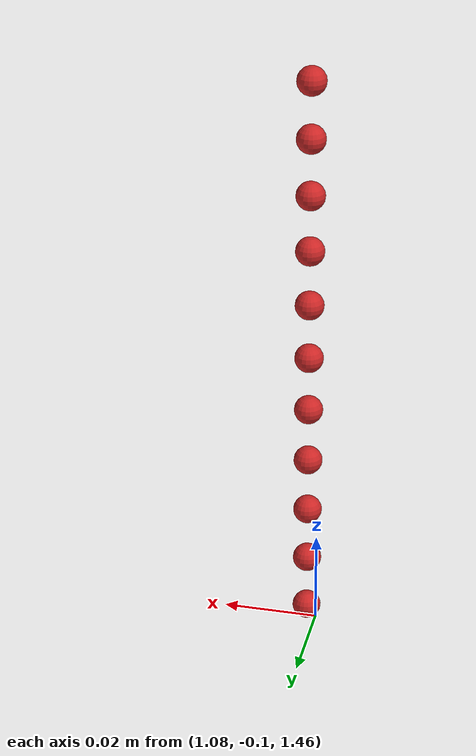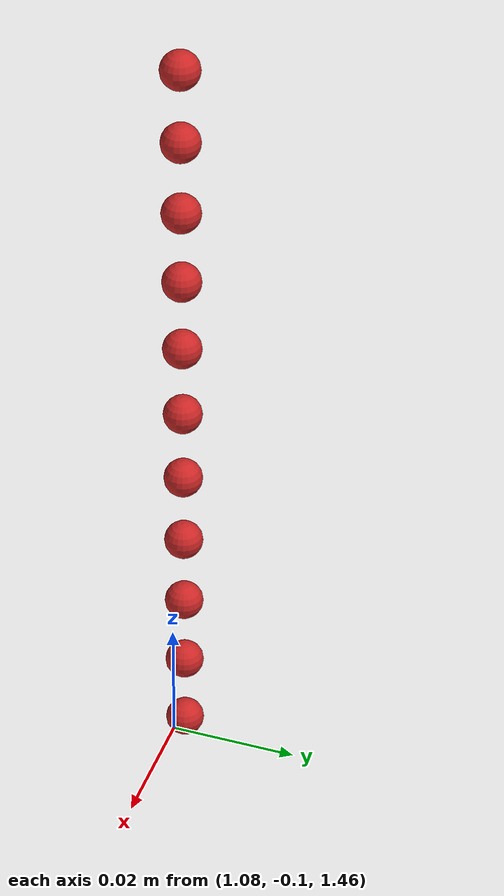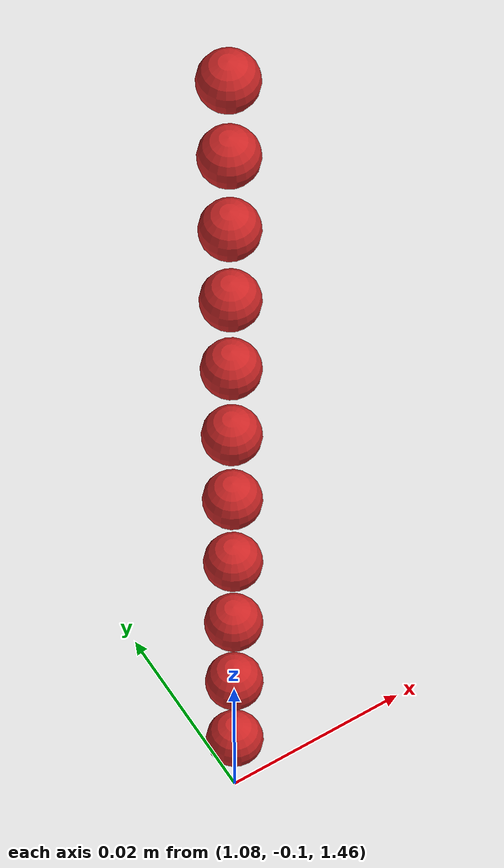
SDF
<sdf version="1.4">
 <world name="default">
  <model name="ground_plane">
   <static>1</static>
   <link name="link">
    <collision name="collision">
     <geometry><plane><normal>0 0 1</normal><size>100 100</size></plane></geometry>
     <surface><friction><ode><mu>100</mu><mu2>50</mu2></ode></friction></surface>
    </collision>
    <visual name="visual">
     <cast_shadows>0</cast_shadows>
     <geometry><plane><normal>0 0 1</normal><size>100 100</size></plane></geometry>
     <material>
      <script><uri>file://media/materials/scripts/gazebo.material</uri><name>Gazebo/Grey</name></script>
     </material>
    </visual>
    <velocity_decay><linear>0</linear><angular>0</angular></velocity_decay>
   </link>
  </model>
  <model name="sphere0">
   <pose>0.540760 -0.048781 0.732288 0 0 0</pose>
   <link name="link">
    <pose>0.540760 -0.048781 0.732288 0 0 0</pose>
    <inertial>
     <mass>0.001</mass>
     <inertia>
      <ixx>0.004</ixx>
      <ixy>0.000000</ixy>
      <ixz>0.000000</ixz>
      <iyy>0.004</iyy>
      <iyz>0.000000</iyz>
      <izz>0.004</izz>
     </inertia>
    </inertial>
    <collision name="collision">
     <surface>
      <contact><ode><kp>10000000000.000000</kp><kd>1</kd></ode></contact>
      <friction><ode><mu>0.01</mu><mu2>0.01</mu2></ode></friction>
     </surface>
     <geometry><sphere><radius>0.003</radius></sphere></geometry>
    </collision>
    <visual name="visual">
     <geometry><sphere><radius>0.003</radius></sphere></geometry>
     <material>
      <script><uri>file://media/materials/scripts/gazebo.material</uri><name>Gazebo/Red</name></script>
     </material>
    </visual>
   </link>
  </model>
  <model name="sphere16">
   <pose>0.540760 -0.048781 0.738288 0 0 0</pose>
   <link name="link">
    <pose>0.540760 -0.048781 0.738288 0 0 0</pose>
    <inertial>
     <mass>0.001</mass>
     <inertia>
      <ixx>0.004</ixx>
      <ixy>0.000000</ixy>
      <ixz>0.000000</ixz>
      <iyy>0.004</iyy>
      <iyz>0.000000</iyz>
      <izz>0.004</izz>
     </inertia>
    </inertial>
    <collision name="collision">
     <surface>
      <contact><ode><kp>10000000000.000000</kp><kd>1</kd></ode></contact>
      <friction><ode><mu>0.01</mu><mu2>0.01</mu2></ode></friction>
     </surface>
     <geometry><sphere><radius>0.003</radius></sphere></geometry>
    </collision>
    <visual name="visual">
     <geometry><sphere><radius>0.003</radius></sphere></geometry>
     <material>
      <script><uri>file://media/materials/scripts/gazebo.material</uri><name>Gazebo/Red</name></script>
     </material>
    </visual>
   </link>
  </model>
  <model name="sphere32">
   <pose>0.540760 -0.048781 0.744288 0 0 0</pose>
   <link name="link">
    <pose>0.540760 -0.048781 0.744288 0 0 0</pose>
    <inertial>
     <mass>0.001</mass>
     <inertia>
      <ixx>0.004</ixx>
      <ixy>0.000000</ixy>
      <ixz>0.000000</ixz>
      <iyy>0.004</iyy>
      <iyz>0.000000</iyz>
      <izz>0.004</izz>
     </inertia>
    </inertial>
    <collision name="collision">
     <surface>
      <contact><ode><kp>10000000000.000000</kp><kd>1</kd></ode></contact>
      <friction><ode><mu>0.01</mu><mu2>0.01</mu2></ode></friction>
     </surface>
     <geometry><sphere><radius>0.003</radius></sphere></geometry>
    </collision>
    <visual name="visual">
     <geometry><sphere><radius>0.003</radius></sphere></geometry>
     <material>
      <script><uri>file://media/materials/scripts/gazebo.material</uri><name>Gazebo/Red</name></script>
     </material>
    </visual>
   </link>
  </model>
  <model name="sphere48">
   <pose>0.540760 -0.048781 0.750288 0 0 0</pose>
   <link name="link">
    <pose>0.540760 -0.048781 0.750288 0 0 0</pose>
    <inertial>
     <mass>0.001</mass>
     <inertia>
      <ixx>0.004</ixx>
      <ixy>0.000000</ixy>
      <ixz>0.000000</ixz>
      <iyy>0.004</iyy>
      <iyz>0.000000</iyz>
      <izz>0.004</izz>
     </inertia>
    </inertial>
    <collision name="collision">
     <surface>
      <contact><ode><kp>10000000000.000000</kp><kd>1</kd></ode></contact>
      <friction><ode><mu>0.01</mu><mu2>0.01</mu2></ode></friction>
     </surface>
     <geometry><sphere><radius>0.003</radius></sphere></geometry>
    </collision>
    <visual name="visual">
     <geometry><sphere><radius>0.003</radius></sphere></geometry>
     <material>
      <script><uri>file://media/materials/scripts/gazebo.material</uri><name>Gazebo/Red</name></script>
     </material>
    </visual>
   </link>
  </model>
  <model name="sphere64">
   <pose>0.540760 -0.048781 0.756288 0 0 0</pose>
   <link name="link">
    <pose>0.540760 -0.048781 0.756288 0 0 0</pose>
    <inertial>
     <mass>0.001</mass>
     <inertia>
      <ixx>0.004</ixx>
      <ixy>0.000000</ixy>
      <ixz>0.000000</ixz>
      <iyy>0.004</iyy>
      <iyz>0.000000</iyz>
      <izz>0.004</izz>
     </inertia>
    </inertial>
    <collision name="collision">
     <surface>
      <contact><ode><kp>10000000000.000000</kp><kd>1</kd></ode></contact>
      <friction><ode><mu>0.01</mu><mu2>0.01</mu2></ode></friction>
     </surface>
     <geometry><sphere><radius>0.003</radius></sphere></geometry>
    </collision>
    <visual name="visual">
     <geometry><sphere><radius>0.003</radius></sphere></geometry>
     <material>
      <script><uri>file://media/materials/scripts/gazebo.material</uri><name>Gazebo/Red</name></script>
     </material>
    </visual>
   </link>
  </model>
  <model name="sphere80">
   <pose>0.540760 -0.048781 0.762288 0 0 0</pose>
   <link name="link">
    <pose>0.540760 -0.048781 0.762288 0 0 0</pose>
    <inertial>
     <mass>0.001</mass>
     <inertia>
      <ixx>0.004</ixx>
      <ixy>0.000000</ixy>
      <ixz>0.000000</ixz>
      <iyy>0.004</iyy>
      <iyz>0.000000</iyz>
      <izz>0.004</izz>
     </inertia>
    </inertial>
    <collision name="collision">
     <surface>
      <contact><ode><kp>10000000000.000000</kp><kd>1</kd></ode></contact>
      <friction><ode><mu>0.01</mu><mu2>0.01</mu2></ode></friction>
     </surface>
     <geometry><sphere><radius>0.003</radius></sphere></geometry>
    </collision>
    <visual name="visual">
     <geometry><sphere><radius>0.003</radius></sphere></geometry>
     <material>
      <script><uri>file://media/materials/scripts/gazebo.material</uri><name>Gazebo/Red</name></script>
     </material>
    </visual>
   </link>
  </model>
  <model name="sphere96">
   <pose>0.540760 -0.048781 0.768288 0 0 0</pose>
   <link name="link">
    <pose>0.540760 -0.048781 0.768288 0 0 0</pose>
    <inertial>
     <mass>0.001</mass>
     <inertia>
      <ixx>0.004</ixx>
      <ixy>0.000000</ixy>
      <ixz>0.000000</ixz>
      <iyy>0.004</iyy>
      <iyz>0.000000</iyz>
      <izz>0.004</izz>
     </inertia>
    </inertial>
    <collision name="collision">
     <surface>
      <contact><ode><kp>10000000000.000000</kp><kd>1</kd></ode></contact>
      <friction><ode><mu>0.01</mu><mu2>0.01</mu2></ode></friction>
     </surface>
     <geometry><sphere><radius>0.003</radius></sphere></geometry>
    </collision>
    <visual name="visual">
     <geometry><sphere><radius>0.003</radius></sphere></geometry>
     <material>
      <script><uri>file://media/materials/scripts/gazebo.material</uri><name>Gazebo/Red</name></script>
     </material>
    </visual>
   </link>
  </model>
  <model name="sphere112">
   <pose>0.540760 -0.048781 0.774288 0 0 0</pose>
   <link name="link">
    <pose>0.540760 -0.048781 0.774288 0 0 0</pose>
    <inertial>
     <mass>0.001</mass>
     <inertia>
      <ixx>0.004</ixx>
      <ixy>0.000000</ixy>
      <ixz>0.000000</ixz>
      <iyy>0.004</iyy>
      <iyz>0.000000</iyz>
      <izz>0.004</izz>
     </inertia>
    </inertial>
    <collision name="collision">
     <surface>
      <contact><ode><kp>10000000000.000000</kp><kd>1</kd></ode></contact>
      <friction><ode><mu>0.01</mu><mu2>0.01</mu2></ode></friction>
     </surface>
     <geometry><sphere><radius>0.003</radius></sphere></geometry>
    </collision>
    <visual name="visual">
     <geometry><sphere><radius>0.003</radius></sphere></geometry>
     <material>
      <script><uri>file://media/materials/scripts/gazebo.material</uri><name>Gazebo/Red</name></script>
     </material>
    </visual>
   </link>
  </model>
  <model name="sphere128">
   <pose>0.540760 -0.048781 0.780288 0 0 0</pose>
   <link name="link">
    <pose>0.540760 -0.048781 0.780288 0 0 0</pose>
    <inertial>
     <mass>0.001</mass>
     <inertia>
      <ixx>0.004</ixx>
      <ixy>0.000000</ixy>
      <ixz>0.000000</ixz>
      <iyy>0.004</iyy>
      <iyz>0.000000</iyz>
      <izz>0.004</izz>
     </inertia>
    </inertial>
    <collision name="collision">
     <surface>
      <contact><ode><kp>10000000000.000000</kp><kd>1</kd></ode></contact>
      <friction><ode><mu>0.01</mu><mu2>0.01</mu2></ode></friction>
     </surface>
     <geometry><sphere><radius>0.003</radius></sphere></geometry>
    </collision>
    <visual name="visual">
     <geometry><sphere><radius>0.003</radius></sphere></geometry>
     <material>
      <script><uri>file://media/materials/scripts/gazebo.material</uri><name>Gazebo/Red</name></script>
     </material>
    </visual>
   </link>
  </model>
  <model name="sphere144">
   <pose>0.540760 -0.048781 0.786288 0 0 0</pose>
   <link name="link">
    <pose>0.540760 -0.048781 0.786288 0 0 0</pose>
    <inertial>
     <mass>0.001</mass>
     <inertia>
      <ixx>0.004</ixx>
      <ixy>0.000000</ixy>
      <ixz>0.000000</ixz>
      <iyy>0.004</iyy>
      <iyz>0.000000</iyz>
      <izz>0.004</izz>
     </inertia>
    </inertial>
    <collision name="collision">
     <surface>
      <contact><ode><kp>10000000000.000000</kp><kd>1</kd></ode></contact>
      <friction><ode><mu>0.01</mu><mu2>0.01</mu2></ode></friction>
     </surface>
     <geometry><sphere><radius>0.003</radius></sphere></geometry>
    </collision>
    <visual name="visual">
     <geometry><sphere><radius>0.003</radius></sphere></geometry>
     <material>
      <script><uri>file://media/materials/scripts/gazebo.material</uri><name>Gazebo/Red</name></script>
     </material>
    </visual>
   </link>
  </model>
  <model name="sphere160">
   <pose>0.540760 -0.048781 0.792288 0 0 0</pose>
   <link name="link">
    <pose>0.540760 -0.048781 0.792288 0 0 0</pose>
    <inertial>
     <mass>0.001</mass>
     <inertia>
      <ixx>0.004</ixx>
      <ixy>0.000000</ixy>
      <ixz>0.000000</ixz>
      <iyy>0.004</iyy>
      <iyz>0.000000</iyz>
      <izz>0.004</izz>
     </inertia>
    </inertial>
    <collision name="collision">
     <surface>
      <contact><ode><kp>10000000000.000000</kp><kd>1</kd></ode></contact>
      <friction><ode><mu>0.01</mu><mu2>0.01</mu2></ode></friction>
     </surface>
     <geometry><sphere><radius>0.003</radius></sphere></geometry>
    </collision>
    <visual name="visual">
     <geometry><sphere><radius>0.003</radius></sphere></geometry>
     <material>
      <script><uri>file://media/materials/scripts/gazebo.material</uri><name>Gazebo/Red</name></script>
     </material>
    </visual>
   </link>
  </model>
 </world>
</sdf>
